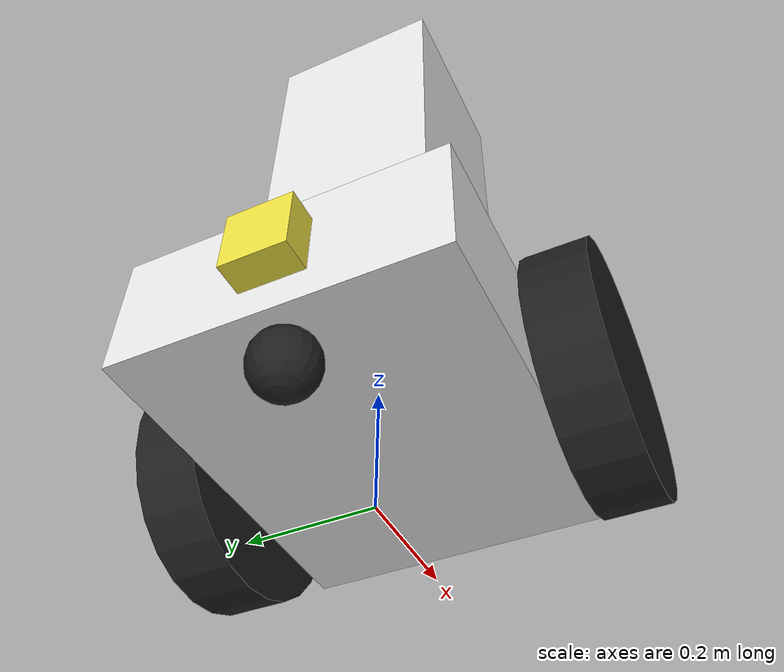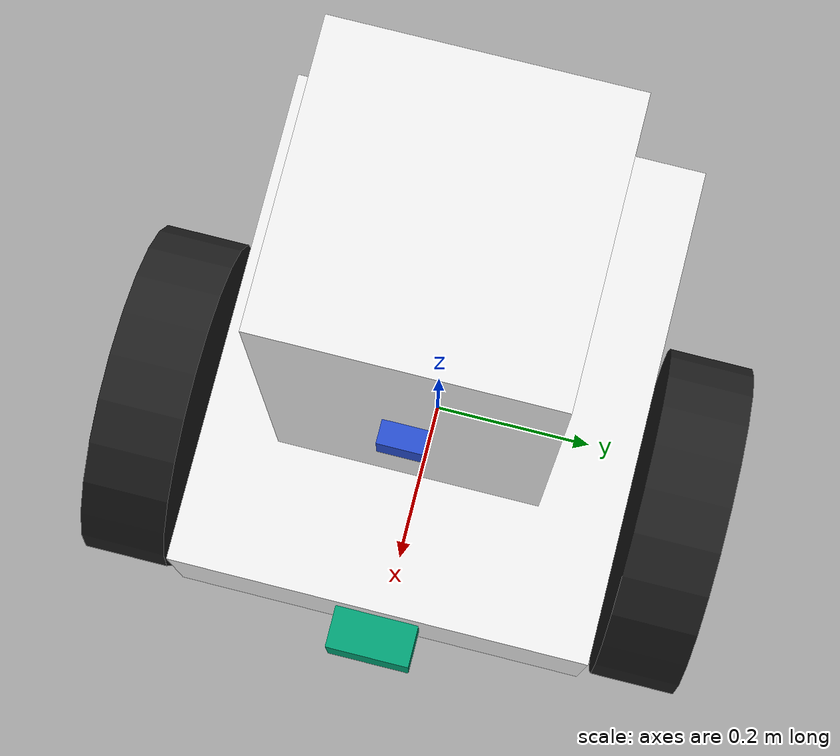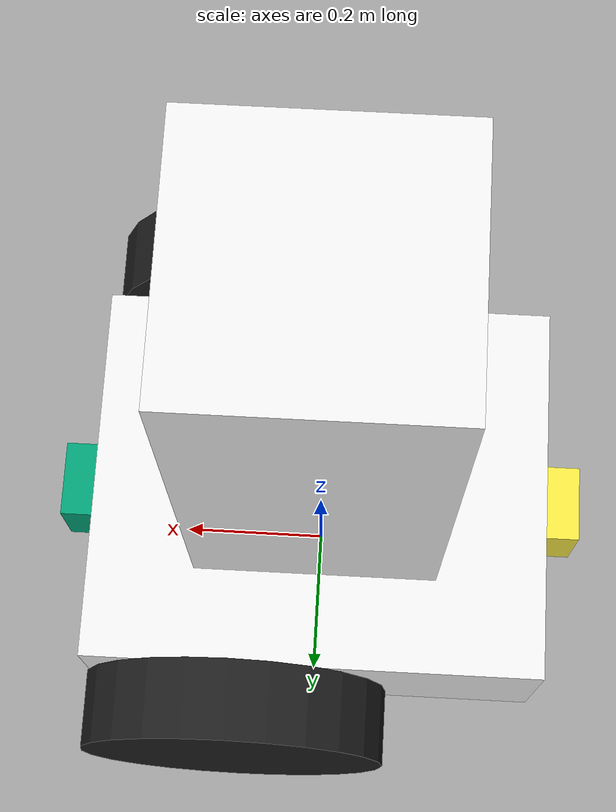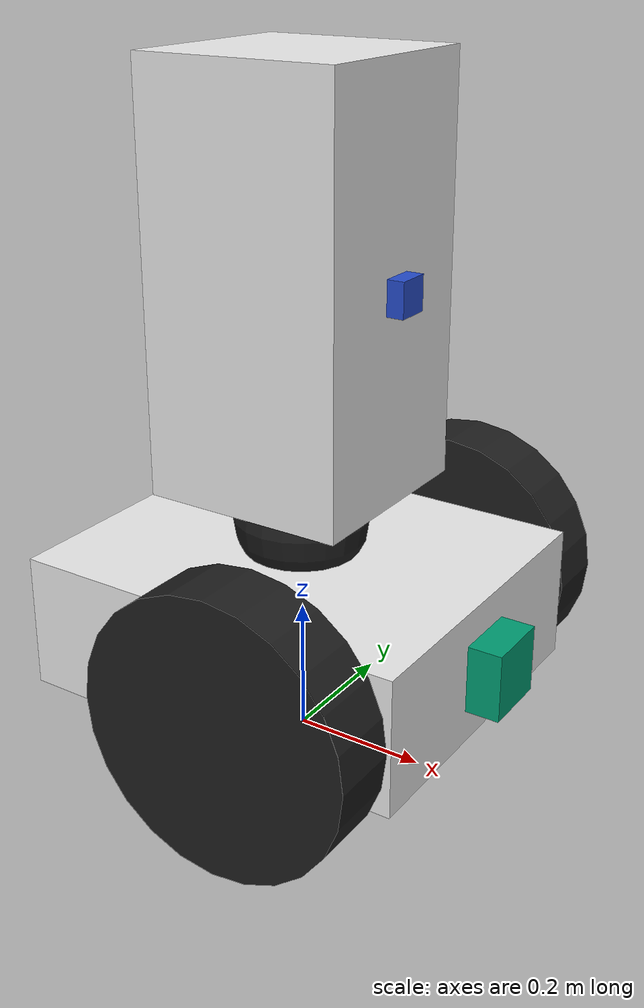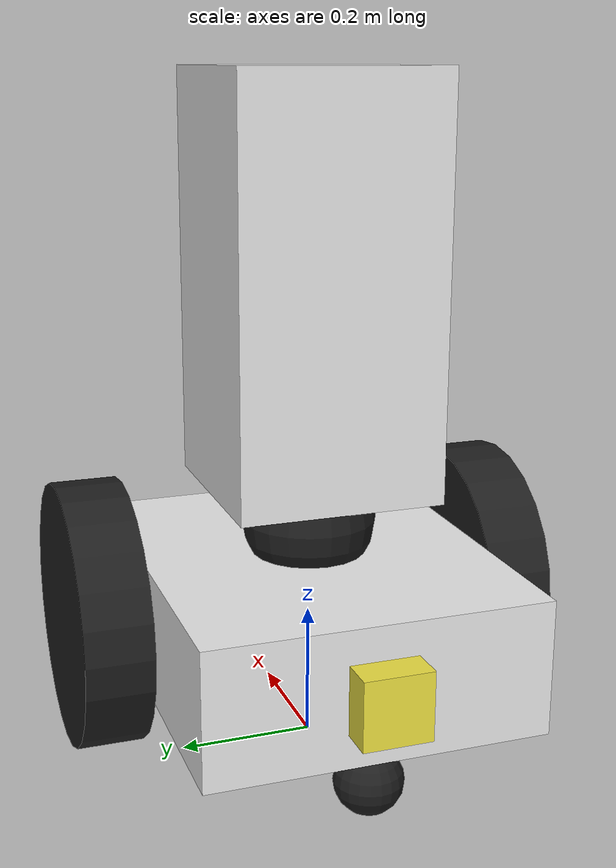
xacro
<?xml version="1.0"?>
<robot name="dummiebot" xmlns:xacro="http://ros.org/wiki/xacro">

  <!-- Parameters -->
  <xacro:property name="PI" value="3.14159"/>

  <xacro:property name="chassis_height" value="0.2"/>
  <xacro:property name="chassis_length" value="0.6"/>
  <xacro:property name="chassis_width" value="0.5"/>
  <xacro:property name="chassis_mass" value="5"/>

  <xacro:property name="caster_radius" value="0.05"/>
  <xacro:property name="caster_mass" value="0.1"/>

  <xacro:property name="wheel_width" value="0.1"/>
  <xacro:property name="wheel_radius" value="0.2"/>
  <xacro:property name="wheel_pos" value="0.2"/>
  <xacro:property name="wheel_mass" value="0.5"/>

  <xacro:property name="body_height" value="0.6"/>
  <xacro:property name="body_length" value="0.3"/>
  <xacro:property name="body_width" value="0.3"/>
  <xacro:property name="body_mass" value="1"/>

  <xacro:property name="body_joint_radius" value="0.1"/>
  <xacro:property name="body_joint_mass" value="1"/>

  <xacro:property name="camera_size" value="0.05"/>
  <xacro:property name="camera_mass" value="0.1"/>

  <!-- Inclusions -->
  <xacro:include filename="$(find dummiebot_description)/urdf/dummiebot.gazebo"/>
  <xacro:include filename="$(find dummiebot_description)/urdf/macros.xacro"/>

  <!-- Structure -->
  <link name="base_link"/>

  <joint name="base_joint" type="fixed">
    <parent link="base_link"/>
    <child link="chassis"/>
  </joint>

  <link name="chassis">
    <collision>
      <origin xyz="0 0 ${wheel_radius}" rpy="0 0 0"/>
      <geometry>
        <box size="${chassis_length} ${chassis_width} ${chassis_height}"/>
      </geometry>
    </collision>
    <visual>
      <origin xyz="0 0 ${wheel_radius}" rpy="0 0 0"/>
      <geometry>
        <box size="${chassis_length} ${chassis_width} ${chassis_height}"/>
      </geometry>
      <material name="white"/>
    </visual>
    <inertial>
      <origin xyz="0 0 ${wheel_radius}" rpy="0 0 0"/>
      <mass value="${chassis_mass}"/>
      <box_inertia m="${chassis_mass}" x="${chassis_length}" y="${chassis_width}" z="${chassis_height}"/>
    </inertial>
  </link>

  <joint name="chassis_chassis_counterweight" type="fixed">
    <parent link="chassis"/>
    <child link="chassis_counterweight"/>
    <origin xyz="${-chassis_length / 2} 0 ${chassis_height}" rpy="0 0 0"/>
  </joint>

  <link name="chassis_counterweight">
    <inertial>
      <mass value="3"/>
      <box_inertia m="3" x="0" y="0" z="0"/>
    </inertial>
  </link>

  <joint name="chassis_caster" type="fixed">
    <parent link="chassis"/>
    <child link="caster_wheel"/>
  </joint>

  <link name="caster_wheel">
    <collision>
      <origin xyz="${caster_radius - chassis_length / 2} 0 ${caster_radius - chassis_height + wheel_radius}" rpy="0 0 0"/>
      <geometry>
        <sphere radius="${caster_radius}"/>
      </geometry>
    </collision>
    <visual>
      <origin xyz="${caster_radius - chassis_length / 2} 0 ${caster_radius - chassis_height + wheel_radius}" rpy="0 0 0"/>
      <geometry>
        <sphere radius="${caster_radius}"/>
      </geometry>
      <material name="black"/>
    </visual>
    <inertial>
      <origin xyz="${caster_radius - chassis_length / 2} 0 ${caster_radius - chassis_height + wheel_radius}" rpy="0 0 0"/>
      <mass value="${caster_mass}"/>
      <sphere_inertia m="${caster_mass}" r="${caster_radius}"/>
    </inertial>
  </link>

  <xacro:wheel lr="left" tY="1"/>
  <xacro:wheel lr="right" tY="-1"/>

  <joint name="chassis_body_joint" type="revolute">
    <parent link="chassis"/>
    <child link="body_joint"/>
    <axis xyz="0 0 1"/>
    <origin xyz="0 0 ${chassis_height + caster_radius * 2 - body_joint_radius / 2}" rpy="0 0 0"/>
    <limit effort="1000.0" lower="-${PI/2}" upper="${PI/2}" velocity="0.5"/>
  </joint>

  <link name="body_joint">
    <collision>
    <origin xyz="0 0 ${body_joint_radius}" rpy="0 0 0"/>
      <geometry>
        <sphere radius="${body_joint_radius}"/>
      </geometry>
    </collision>
    <visual>
    <origin xyz="0 0 ${body_joint_radius}" rpy="0 0 0"/>
      <geometry>
        <sphere radius="${body_joint_radius}"/>
      </geometry>
      <material name="black"/>
    </visual>
    <inertial>
    <origin xyz="0 0 ${body_joint_radius}" rpy="0 0 0"/>
      <mass value="${body_joint_mass}"/>
      <sphere_inertia m="${body_joint_mass}" r="${body_joint_radius}"/>
    </inertial>
  </link>

  <joint name="body_joint_body" type="revolute">
    <parent link="body_joint"/>
    <child link="body"/>
    <axis xyz="0 1 0"/>
    <origin xyz="0 0 ${body_joint_radius * 2 - body_joint_radius / 2}" rpy="0 0 0"/>
    <limit effort="1000.0" lower="-${PI/2}" upper="${PI/2}" velocity="0.5"/>
  </joint>

  <link name="body">
    <collision>
      <origin xyz="0 0 ${body_height / 2}" rpy="0 0 0"/>
      <geometry>
        <box size="${body_length} ${body_width} ${body_height}"/>
      </geometry>
    </collision>
    <visual>
      <origin xyz="0 0 ${body_height / 2}" rpy="0 0 0"/>
      <geometry>
        <box size="${body_length} ${body_width} ${body_height}"/>
      </geometry>
      <material name="white"/>
    </visual>
    <inertial>
      <origin xyz="0 0 ${body_height / 2}" rpy="0 0 0"/>
      <mass value="${body_mass}"/>
      <box_inertia m="${body_mass}" x="${body_length}" y="${body_width}" z="${body_height}"/>
    </inertial>
  </link>

  <joint name="body_camera" type="fixed">
    <parent link="body"/>
    <child link="camera_link"/>
    <origin xyz="${body_length / 2} 0 ${body_height / 2}" rpy="0 0 0"/>
  </joint>

  <link name="camera_link">
    <collision>
      <origin xyz="0 0 0" rpy="0 0 0"/>
      <geometry>
        <box size="${camera_size} ${camera_size} ${camera_size}"/>
      </geometry>
    </collision>
    <visual>
      <origin xyz="0 0 0" rpy="0 0 0"/>
      <geometry>
        <box size="${camera_size} ${camera_size} ${camera_size}"/>
      </geometry>
      <material name="blue"/>
    </visual>
    <inertial>
      <mass value="${camera_mass}"/>
      <origin xyz="0 0 0" rpy="0 0 0"/>
      <box_inertia m="${camera_mass}" x="${camera_size}" y="${camera_size}" z="${camera_size}"/>
    </inertial>
  </link>

  <joint name="body_body_counterweight" type="fixed">
    <parent link="body"/>
    <child link="body_counterweight"/>
    <origin xyz="${-body_length / 2} 0 ${body_height / 2}" rpy="0 0 0"/>
  </joint>

  <link name="body_counterweight">
    <inertial>
      <mass value="${camera_mass}"/>
      <box_inertia m="${camera_mass}" x="0" y="0" z="0"/>
    </inertial>
  </link>

  <!-- Hokuyo Laser 1 -->
  <joint name="hokuyo1_joint" type="fixed">
    <origin xyz="${chassis_length / 2} 0 ${chassis_height}" rpy="0 0 0"/>
    <parent link="chassis"/>
    <child link="hokuyo1_link"/>
  </joint>

  <link name="hokuyo1_link">
    <collision>
      <origin xyz="0 0 0" rpy="0 0 0"/>
      <geometry>
	       <box size="0.1 0.1 0.1"/>
      </geometry>
    </collision>

    <visual>
      <origin xyz="0 0 0" rpy="0 0 0"/>
      <geometry>
	       <box size="0.1 0.1 0.1"/>
      </geometry>
    </visual>

    <inertial>
      <mass value="1e-5" />
      <origin xyz="0 0 0" rpy="0 0 0"/>
      <inertia ixx="1e-6" ixy="0" ixz="0" iyy="1e-6" iyz="0" izz="1e-6" />
    </inertial>
  </link>

    <!-- Hokuyo Laser 2 -->
    <joint name="hokuyo2_joint" type="fixed">
      <origin xyz="${-chassis_length / 2} 0 ${chassis_height}" rpy="0 0 ${PI}"/>
      <parent link="chassis"/>
      <child link="hokuyo2_link"/>
    </joint>

    <link name="hokuyo2_link">
      <collision>
        <origin xyz="0 0 0" rpy="0 0 0"/>
        <geometry>
  	       <box size="0.1 0.1 0.1"/>
        </geometry>
      </collision>

    <visual>
      <origin xyz="0 0 0" rpy="0 0 0"/>
      <geometry>
	       <box size="0.1 0.1 0.1"/>
      </geometry>
    </visual>

    <inertial>
      <mass value="1e-5" />
      <origin xyz="0 0 0" rpy="0 0 0"/>
      <inertia ixx="1e-6" ixy="0" ixz="0" iyy="1e-6" iyz="0" izz="1e-6" />
    </inertial>
  </link>

  <transmission name="chassis_body_joint_trans">
    <type>transmission_interface/SimpleTransmission</type>
    <joint name="chassis_body_joint">
      <hardwareInterface>hardware_interface/EffortJointInterface</hardwareInterface>
    </joint>
    <actuator name="z_motor">
      <hardwareInterface>hardware_interface/EffortJointInterface</hardwareInterface>
      <mechanicalReduction>10</mechanicalReduction>
    </actuator>
  </transmission>

  <transmission name="body_joint_body_trans">
    <type>transmission_interface/SimpleTransmission</type>
    <joint name="body_joint_body">
      <hardwareInterface>hardware_interface/EffortJointInterface</hardwareInterface>
    </joint>
    <actuator name="y_motor">
      <hardwareInterface>hardware_interface/EffortJointInterface</hardwareInterface>
      <mechanicalReduction>10</mechanicalReduction>
    </actuator>
  </transmission>

</robot>

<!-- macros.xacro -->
<robot name="dummiebot" xmlns:xacro="http://ros.org/wiki/xacro">

  <!-- Macros for inertia of different shapes -->
  <xacro:macro name="cylinder_inertia" params="m r h">
    <inertia  ixx="${m*(3*r*r+h*h)/12}" ixy="0" ixz="0"
              iyy="${m*(3*r*r+h*h)/12}" iyz="0"
              izz="${m*r*r/2}"
    />
  </xacro:macro>

  <xacro:macro name="box_inertia" params="m x y z">
    <inertia  ixx="${m*(y*y+z*z)/12}" ixy="0" ixz="0"
              iyy="${m*(x*x+z*z)/12}" iyz="0"
              izz="${m*(x*x+z*z)/12}"
    />
  </xacro:macro>

  <xacro:macro name="sphere_inertia" params="m r">
    <inertia  ixx="${2*m*r*r/5}" ixy="0" ixz="0"
              iyy="${2*m*r*r/5}" iyz="0"
              izz="${2*m*r*r/5}"
    />
  </xacro:macro>

  <!-- Macro for the wheels -->
  <xacro:macro name="wheel" params="lr tY">
    <link name="${lr}_wheel">
      <collision>
        <origin xyz="0 0 0" rpy="0 ${PI/2} ${PI/2}"/>
        <geometry>
          <cylinder length="${wheel_width}" radius="${wheel_radius}"/>
        </geometry>
      </collision>
      <visual>
        <origin xys="0 0 0" rpy="0 ${PI/2} ${PI/2}"/>
        <geometry>
          <cylinder length="${wheel_width}" radius="${wheel_radius}"/>
        </geometry>
        <material name="black"/>
      </visual>
      <inertial>
        <origin xyz="0 0 0" rpy="0 ${PI/2} ${PI/2}"/>
        <mass value="${wheel_mass}"/>
        <cylinder_inertia m="${wheel_mass}" r="${wheel_radius}" h="${wheel_width}"/>
      </inertial>
    </link>

    <gazebo reference="${lr}_wheel">
      <mu1 value="100.0"/>
      <mu2 value="50.0"/>
      <material>Gazebo/Black</material>
    </gazebo>

    <joint name="${lr}_wheel_hinge" type="continuous">
      <type>transmission_interface/SimpleTransmission</type>
      <parent link="chassis"/>
      <child link="${lr}_wheel"/>
      <origin xyz="${-wheel_pos + chassis_length / 2} ${tY * wheel_width / 2 + tY * chassis_width / 2 + tY * 0.01} ${wheel_radius}" rpy="0 0 0"/>
      <axis xyz="0 1 0" rpy="0 0 0"/>
      <limit effort="100" velocity="100"/>
      <joint_properties damping="1.0" friciton="0.5"/>
    </joint>

    <transmission name="${lr}_trans">
      <type>transmission_interface/SimpleTransmission</type>
      <joint name="${lr}_wheel_hinge">
        <hardwareInterface>hardware_interface/VelocityJointInterface</hardwareInterface>
      </joint>
      <actuator name="${lr}_motor">
        <hardwareInterface>hardware_interface/VelocityJointInterface</hardwareInterface>
        <mechanicalReduction>1</mechanicalReduction>
      </actuator>
    </transmission>

  </xacro:macro>

</robot>
